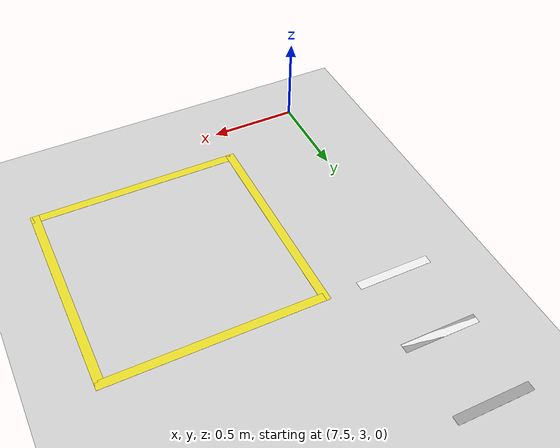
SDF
<sdf version="1.6">
 <world name="default">
  <model name="ground_plane">
   <static>1</static>
   <link name="link">
    <collision name="collision">
     <geometry><plane><normal>0 0 1</normal><size>100 100</size></plane></geometry>
     <surface><friction><ode><mu>100</mu><mu2>50</mu2></ode></friction></surface>
    </collision>
    <visual name="visual">
     <cast_shadows>0</cast_shadows>
     <geometry><plane><normal>0 0 1</normal><size>100 100</size></plane></geometry>
     <material>
      <script><uri>file://media/materials/scripts/gazebo.material</uri><name>Gazebo/Grey</name></script>
     </material>
    </visual>
   </link>
  </model>
  <model name="line120cm_5">
   <link name="link_1">
    <inertial>
     <mass>1</mass>
     <inertia>
      <ixx>0.166667</ixx>
      <ixy>0</ixy>
      <ixz>0</ixz>
      <iyy>0.166667</iyy>
      <iyz>0</iyz>
      <izz>0.166667</izz>
     </inertia>
    </inertial>
    <visual name="visual">
     <geometry><box><size>1.2 0.05 0.001</size></box></geometry>
     <material>
      <script><uri>file://media/materials/scripts/gazebo.material</uri><name>Gazebo/Yellow</name></script>
     </material>
    </visual>
    <collision name="collision">
     <geometry><box><size>1.2 0.05 1e-05</size></box></geometry>
     <surface>
      <friction>
       <ode><mu>1</mu><mu2>1</mu2><fdir1>0 0 0</fdir1><slip1>0</slip1><slip2>0</slip2></ode>
       <torsional>
        <coefficient>1</coefficient>
        <patch_radius>0</patch_radius>
        <surface_radius>0</surface_radius>
        <use_patch_radius>1</use_patch_radius>
        <ode><slip>0</slip></ode>
       </torsional>
      </friction>
      <bounce><restitution_coefficient>0</restitution_coefficient><threshold>1e+06</threshold></bounce>
      <contact>
       <collide_without_contact>0</collide_without_contact>
       <collide_without_contact_bitmask>1</collide_without_contact_bitmask>
       <collide_bitmask>1</collide_bitmask>
       <ode>
        <soft_cfm>0</soft_cfm>
        <soft_erp>0.2</soft_erp>
        <kp>1e+13</kp>
        <kd>1</kd>
        <max_vel>0.01</max_vel>
        <min_depth>0</min_depth>
       </ode>
       <bullet>
        <split_impulse>1</split_impulse>
        <split_impulse_penetration_threshold>-0.01</split_impulse_penetration_threshold>
        <soft_cfm>0</soft_cfm>
        <soft_erp>0.2</soft_erp>
        <kp>1e+13</kp>
        <kd>1</kd>
       </bullet>
      </contact>
     </surface>
    </collision>
   </link>
   <static>1</static>
   <pose>8.6 4.375 0 0 -0 0</pose>
  </model>
  <model name="line120cm_6">
   <link name="link_1">
    <inertial>
     <mass>1</mass>
     <inertia>
      <ixx>0.166667</ixx>
      <ixy>0</ixy>
      <ixz>0</ixz>
      <iyy>0.166667</iyy>
      <iyz>0</iyz>
      <izz>0.166667</izz>
     </inertia>
    </inertial>
    <visual name="visual">
     <geometry><box><size>1.2 0.05 0.001</size></box></geometry>
     <material>
      <script><uri>file://media/materials/scripts/gazebo.material</uri><name>Gazebo/Yellow</name></script>
     </material>
    </visual>
    <collision name="collision">
     <geometry><box><size>1.2 0.05 1e-05</size></box></geometry>
     <surface>
      <friction>
       <ode><mu>1</mu><mu2>1</mu2><fdir1>0 0 0</fdir1><slip1>0</slip1><slip2>0</slip2></ode>
       <torsional>
        <coefficient>1</coefficient>
        <patch_radius>0</patch_radius>
        <surface_radius>0</surface_radius>
        <use_patch_radius>1</use_patch_radius>
        <ode><slip>0</slip></ode>
       </torsional>
      </friction>
      <bounce><restitution_coefficient>0</restitution_coefficient><threshold>1e+06</threshold></bounce>
      <contact>
       <collide_without_contact>0</collide_without_contact>
       <collide_without_contact_bitmask>1</collide_without_contact_bitmask>
       <collide_bitmask>1</collide_bitmask>
       <ode>
        <soft_cfm>0</soft_cfm>
        <soft_erp>0.2</soft_erp>
        <kp>1e+13</kp>
        <kd>1</kd>
        <max_vel>0.01</max_vel>
        <min_depth>0</min_depth>
       </ode>
       <bullet>
        <split_impulse>1</split_impulse>
        <split_impulse_penetration_threshold>-0.01</split_impulse_penetration_threshold>
        <soft_cfm>0</soft_cfm>
        <soft_erp>0.2</soft_erp>
        <kp>1e+13</kp>
        <kd>1</kd>
       </bullet>
      </contact>
     </surface>
    </collision>
   </link>
   <static>1</static>
   <pose>8 3.8 0 0 -0 1.5708</pose>
  </model>
  <model name="line120cm_7">
   <link name="link_1">
    <inertial>
     <mass>1</mass>
     <inertia>
      <ixx>0.166667</ixx>
      <ixy>0</ixy>
      <ixz>0</ixz>
      <iyy>0.166667</iyy>
      <iyz>0</iyz>
      <izz>0.166667</izz>
     </inertia>
    </inertial>
    <visual name="visual">
     <geometry><box><size>1.2 0.05 0.001</size></box></geometry>
     <material>
      <script><uri>file://media/materials/scripts/gazebo.material</uri><name>Gazebo/Yellow</name></script>
     </material>
    </visual>
    <collision name="collision">
     <geometry><box><size>1.2 0.05 1e-05</size></box></geometry>
     <surface>
      <friction>
       <ode><mu>1</mu><mu2>1</mu2><fdir1>0 0 0</fdir1><slip1>0</slip1><slip2>0</slip2></ode>
       <torsional>
        <coefficient>1</coefficient>
        <patch_radius>0</patch_radius>
        <surface_radius>0</surface_radius>
        <use_patch_radius>1</use_patch_radius>
        <ode><slip>0</slip></ode>
       </torsional>
      </friction>
      <bounce><restitution_coefficient>0</restitution_coefficient><threshold>1e+06</threshold></bounce>
      <contact>
       <collide_without_contact>0</collide_without_contact>
       <collide_without_contact_bitmask>1</collide_without_contact_bitmask>
       <collide_bitmask>1</collide_bitmask>
       <ode>
        <soft_cfm>0</soft_cfm>
        <soft_erp>0.2</soft_erp>
        <kp>1e+13</kp>
        <kd>1</kd>
        <max_vel>0.01</max_vel>
        <min_depth>0</min_depth>
       </ode>
       <bullet>
        <split_impulse>1</split_impulse>
        <split_impulse_penetration_threshold>-0.01</split_impulse_penetration_threshold>
        <soft_cfm>0</soft_cfm>
        <soft_erp>0.2</soft_erp>
        <kp>1e+13</kp>
        <kd>1</kd>
       </bullet>
      </contact>
     </surface>
    </collision>
   </link>
   <static>1</static>
   <pose>8.6 3.225 0 0 -0 0</pose>
  </model>
  <model name="line120cm_8">
   <link name="link_1">
    <inertial>
     <mass>1</mass>
     <inertia>
      <ixx>0.166667</ixx>
      <ixy>0</ixy>
      <ixz>0</ixz>
      <iyy>0.166667</iyy>
      <iyz>0</iyz>
      <izz>0.166667</izz>
     </inertia>
    </inertial>
    <visual name="visual">
     <geometry><box><size>1.2 0.05 0.001</size></box></geometry>
     <material>
      <script><uri>file://media/materials/scripts/gazebo.material</uri><name>Gazebo/Yellow</name></script>
     </material>
    </visual>
    <collision name="collision">
     <geometry><box><size>1.2 0.05 1e-05</size></box></geometry>
     <surface>
      <friction>
       <ode><mu>1</mu><mu2>1</mu2><fdir1>0 0 0</fdir1><slip1>0</slip1><slip2>0</slip2></ode>
       <torsional>
        <coefficient>1</coefficient>
        <patch_radius>0</patch_radius>
        <surface_radius>0</surface_radius>
        <use_patch_radius>1</use_patch_radius>
        <ode><slip>0</slip></ode>
       </torsional>
      </friction>
      <bounce><restitution_coefficient>0</restitution_coefficient><threshold>1e+06</threshold></bounce>
      <contact>
       <collide_without_contact>0</collide_without_contact>
       <collide_without_contact_bitmask>1</collide_without_contact_bitmask>
       <collide_bitmask>1</collide_bitmask>
       <ode>
        <soft_cfm>0</soft_cfm>
        <soft_erp>0.2</soft_erp>
        <kp>1e+13</kp>
        <kd>1</kd>
        <max_vel>0.01</max_vel>
        <min_depth>0</min_depth>
       </ode>
       <bullet>
        <split_impulse>1</split_impulse>
        <split_impulse_penetration_threshold>-0.01</split_impulse_penetration_threshold>
        <soft_cfm>0</soft_cfm>
        <soft_erp>0.2</soft_erp>
        <kp>1e+13</kp>
        <kd>1</kd>
       </bullet>
      </contact>
     </surface>
    </collision>
   </link>
   <static>1</static>
   <pose>9.175 3.8 0 0 -0 1.5708</pose>
  </model>
  <model name="whiteLine_42_4">
   <link name="link_3">
    <inertial>
     <mass>1</mass>
     <inertia>
      <ixx>0.166667</ixx>
      <ixy>0</ixy>
      <ixz>0</ixz>
      <iyy>0.166667</iyy>
      <iyz>0</iyz>
      <izz>0.166667</izz>
     </inertia>
    </inertial>
    <visual name="visual">
     <pose>-0.21 0 0 0 -0 0</pose>
     <geometry><box><size>0.05 0.42 0.001</size></box></geometry>
     <material>
      <lighting>1</lighting>
      <script><uri>file://media/materials/scripts/gazebo.material</uri><name>Gazebo/White</name></script>
      <shader type="pixel"><normal_map>__default__</normal_map></shader>
      <ambient>1 1 1 1</ambient>
      <diffuse>1 1 1 1</diffuse>
      <specular>0.01 0.01 0.01 1</specular>
      <emissive>0 0 0 1</emissive>
     </material>
    </visual>
    <visual name="ModelPreview_7::link_3::visual_1">
     <pose>0.21 0 0 0 -0 0</pose>
     <geometry><box><size>0.05 0.42 0.001</size></box></geometry>
     <material>
      <lighting>1</lighting>
      <script><uri>file://media/materials/scripts/gazebo.material</uri><name>Gazebo/Grey</name></script>
      <shader type="pixel"><normal_map>__default__</normal_map></shader>
      <ambient>1 1 1 1</ambient>
      <diffuse>1 1 1 1</diffuse>
      <specular>0.01 0.01 0.01 1</specular>
      <emissive>0 0 0 1</emissive>
     </material>
    </visual>
    <collision name="collision">
     <pose>-0.21 0 0 0 -0 0</pose>
     <geometry><box><size>0.05 0.42 1e-05</size></box></geometry>
     <surface>
      <friction>
       <ode><mu>1</mu><mu2>1</mu2><fdir1>0 0 0</fdir1><slip1>0</slip1><slip2>0</slip2></ode>
       <torsional>
        <coefficient>1</coefficient>
        <patch_radius>0</patch_radius>
        <surface_radius>0</surface_radius>
        <use_patch_radius>1</use_patch_radius>
        <ode><slip>0</slip></ode>
       </torsional>
      </friction>
      <bounce><restitution_coefficient>0</restitution_coefficient><threshold>1e+06</threshold></bounce>
      <contact>
       <collide_without_contact>0</collide_without_contact>
       <collide_without_contact_bitmask>1</collide_without_contact_bitmask>
       <collide_bitmask>1</collide_bitmask>
       <ode>
        <soft_cfm>0</soft_cfm>
        <soft_erp>0.2</soft_erp>
        <kp>1e+13</kp>
        <kd>1</kd>
        <max_vel>0.01</max_vel>
        <min_depth>0</min_depth>
       </ode>
       <bullet>
        <split_impulse>1</split_impulse>
        <split_impulse_penetration_threshold>-0.01</split_impulse_penetration_threshold>
        <soft_cfm>0</soft_cfm>
        <soft_erp>0.2</soft_erp>
        <kp>1e+13</kp>
        <kd>1</kd>
       </bullet>
      </contact>
     </surface>
    </collision>
    <collision name="collision_1">
     <pose>0.21 0 0 0 -0 0</pose>
     <geometry><box><size>0.05 0.42 1e-05</size></box></geometry>
     <surface>
      <friction>
       <ode><mu>1</mu><mu2>1</mu2><fdir1>0 0 0</fdir1><slip1>0</slip1><slip2>0</slip2></ode>
       <torsional>
        <coefficient>1</coefficient>
        <patch_radius>0</patch_radius>
        <surface_radius>0</surface_radius>
        <use_patch_radius>1</use_patch_radius>
        <ode><slip>0</slip></ode>
       </torsional>
      </friction>
      <bounce><restitution_coefficient>0</restitution_coefficient><threshold>1e+06</threshold></bounce>
      <contact>
       <collide_without_contact>0</collide_without_contact>
       <collide_without_contact_bitmask>1</collide_without_contact_bitmask>
       <collide_bitmask>1</collide_bitmask>
       <ode>
        <soft_cfm>0</soft_cfm>
        <soft_erp>0.2</soft_erp>
        <kp>1e+13</kp>
        <kd>1</kd>
        <max_vel>0.01</max_vel>
        <min_depth>0</min_depth>
       </ode>
       <bullet>
        <split_impulse>1</split_impulse>
        <split_impulse_penetration_threshold>-0.01</split_impulse_penetration_threshold>
        <soft_cfm>0</soft_cfm>
        <soft_erp>0.2</soft_erp>
        <kp>1e+13</kp>
        <kd>1</kd>
       </bullet>
      </contact>
     </surface>
    </collision>
   </link>
   <static>1</static>
   <pose>7.6 4.6 0 0 -0 1.5708</pose>
  </model>
  <model name="whiteLine_42_5">
   <link name="link_3">
    <inertial>
     <mass>1</mass>
     <inertia>
      <ixx>0.166667</ixx>
      <ixy>0</ixy>
      <ixz>0</ixz>
      <iyy>0.166667</iyy>
      <iyz>0</iyz>
      <izz>0.166667</izz>
     </inertia>
    </inertial>
    <visual name="visual">
     <pose>-0.21 0 0 0 -0 0</pose>
     <geometry><box><size>0.05 0.42 0.001</size></box></geometry>
     <material>
      <lighting>1</lighting>
      <script><uri>file://media/materials/scripts/gazebo.material</uri><name>Gazebo/White</name></script>
      <shader type="pixel"><normal_map>__default__</normal_map></shader>
      <ambient>1 1 1 1</ambient>
      <diffuse>1 1 1 1</diffuse>
      <specular>0.01 0.01 0.01 1</specular>
      <emissive>0 0 0 1</emissive>
     </material>
    </visual>
    <visual name="ModelPreview_7::link_3::visual_1">
     <pose>0.21 0 0 0 -0 0</pose>
     <geometry><box><size>0.05 0.42 0.001</size></box></geometry>
     <material>
      <lighting>1</lighting>
      <script><uri>file://media/materials/scripts/gazebo.material</uri><name>Gazebo/Grey</name></script>
      <shader type="pixel"><normal_map>__default__</normal_map></shader>
      <ambient>1 1 1 1</ambient>
      <diffuse>1 1 1 1</diffuse>
      <specular>0.01 0.01 0.01 1</specular>
      <emissive>0 0 0 1</emissive>
     </material>
    </visual>
    <collision name="collision">
     <pose>-0.21 0 0 0 -0 0</pose>
     <geometry><box><size>0.05 0.42 1e-05</size></box></geometry>
     <surface>
      <friction>
       <ode><mu>1</mu><mu2>1</mu2><fdir1>0 0 0</fdir1><slip1>0</slip1><slip2>0</slip2></ode>
       <torsional>
        <coefficient>1</coefficient>
        <patch_radius>0</patch_radius>
        <surface_radius>0</surface_radius>
        <use_patch_radius>1</use_patch_radius>
        <ode><slip>0</slip></ode>
       </torsional>
      </friction>
      <bounce><restitution_coefficient>0</restitution_coefficient><threshold>1e+06</threshold></bounce>
      <contact>
       <collide_without_contact>0</collide_without_contact>
       <collide_without_contact_bitmask>1</collide_without_contact_bitmask>
       <collide_bitmask>1</collide_bitmask>
       <ode>
        <soft_cfm>0</soft_cfm>
        <soft_erp>0.2</soft_erp>
        <kp>1e+13</kp>
        <kd>1</kd>
        <max_vel>0.01</max_vel>
        <min_depth>0</min_depth>
       </ode>
       <bullet>
        <split_impulse>1</split_impulse>
        <split_impulse_penetration_threshold>-0.01</split_impulse_penetration_threshold>
        <soft_cfm>0</soft_cfm>
        <soft_erp>0.2</soft_erp>
        <kp>1e+13</kp>
        <kd>1</kd>
       </bullet>
      </contact>
     </surface>
    </collision>
    <collision name="collision_1">
     <pose>0.21 0 0 0 -0 0</pose>
     <geometry><box><size>0.05 0.42 1e-05</size></box></geometry>
     <surface>
      <friction>
       <ode><mu>1</mu><mu2>1</mu2><fdir1>0 0 0</fdir1><slip1>0</slip1><slip2>0</slip2></ode>
       <torsional>
        <coefficient>1</coefficient>
        <patch_radius>0</patch_radius>
        <surface_radius>0</surface_radius>
        <use_patch_radius>1</use_patch_radius>
        <ode><slip>0</slip></ode>
       </torsional>
      </friction>
      <bounce><restitution_coefficient>0</restitution_coefficient><threshold>1e+06</threshold></bounce>
      <contact>
       <collide_without_contact>0</collide_without_contact>
       <collide_without_contact_bitmask>1</collide_without_contact_bitmask>
       <collide_bitmask>1</collide_bitmask>
       <ode>
        <soft_cfm>0</soft_cfm>
        <soft_erp>0.2</soft_erp>
        <kp>1e+13</kp>
        <kd>1</kd>
        <max_vel>0.01</max_vel>
        <min_depth>0</min_depth>
       </ode>
       <bullet>
        <split_impulse>1</split_impulse>
        <split_impulse_penetration_threshold>-0.01</split_impulse_penetration_threshold>
        <soft_cfm>0</soft_cfm>
        <soft_erp>0.2</soft_erp>
        <kp>1e+13</kp>
        <kd>1</kd>
       </bullet>
      </contact>
     </surface>
    </collision>
   </link>
   <static>1</static>
   <pose>7.6 5.02196 0 0 -0 1.5708</pose>
  </model>
 </world>
</sdf>
